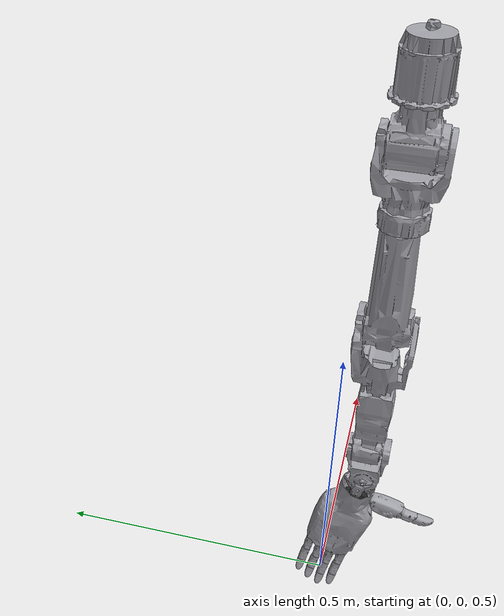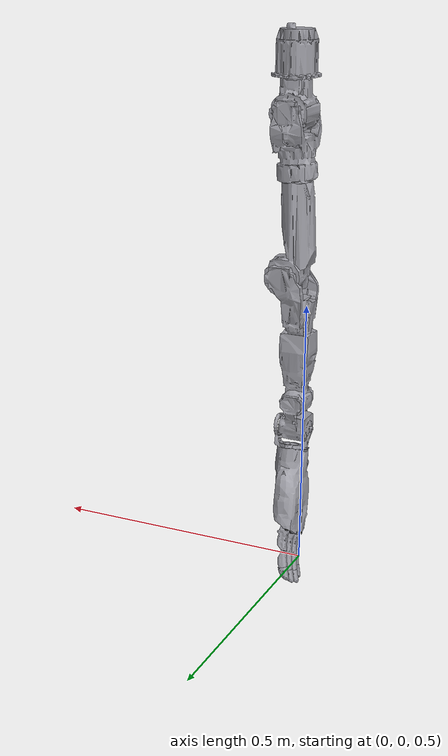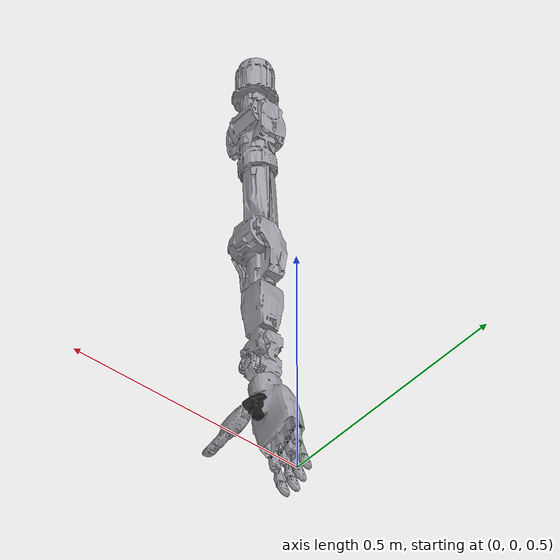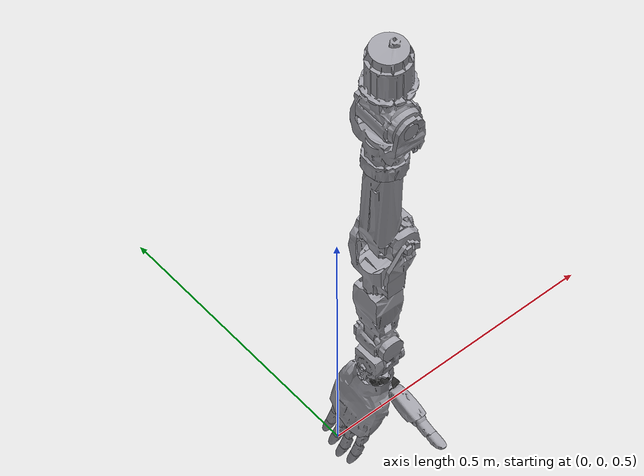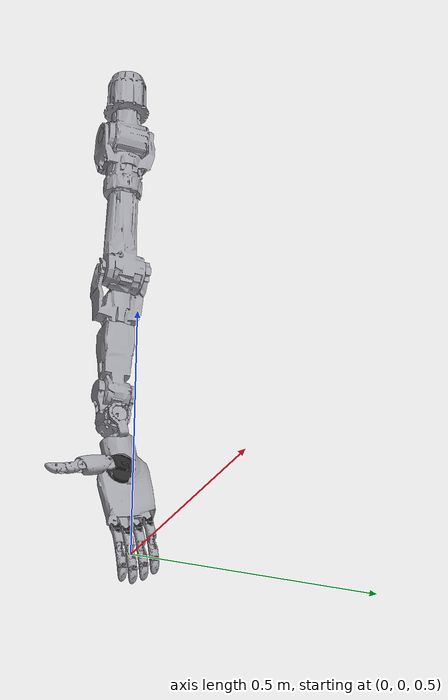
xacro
<?xml version="1.0"?>
<!-- MoveIt 用的机器人描述入口，实际模型在 temp_description 包里，改模型只需改那边 -->
<robot xmlns:xacro="http://www.ros.org/wiki/xacro" name="youbi_tc7_arm_with_l20_hand">
  <xacro:include filename="$(find temp_description)/urdf/arm_with_hand.urdf.xacro"/>
</robot>

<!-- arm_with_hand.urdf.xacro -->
<robot name="youbi_tc7_arm_with_l20_hand" xmlns:xacro="http://www.ros.org/wiki/xacro">
  <xacro:arg name="hand_xyz" default="0 0 0"/>
  <xacro:arg name="hand_rpy" default="0 0 0"/>
  <xacro:arg name="with_pen" default="false"/>
  <xacro:arg name="pen_xyz" default="0.05 0.01 0.205"/>
  <xacro:arg name="pen_rpy" default="1.5707963267948966 0 0"/>

  <xacro:include filename="arm.urdf.xacro"/>
  <xacro:include filename="hand_l20.urdf.xacro"/>
  <xacro:include filename="pen.urdf.xacro"/>

  <!-- 灵巧手挂载点：机械臂 hand_mount → 灵巧手掌根 -->
  <joint name="hand_attach_joint" type="fixed">
    <origin xyz="$(arg hand_xyz)" rpy="$(arg hand_rpy)"/>
    <parent link="hand_mount"/>
    <child link="hand_base_link"/>
  </joint>
  <xacro:if value="$(arg with_pen)">
    <xacro:simple_pen parent="hand_base_link" xyz="$(arg pen_xyz)" rpy="$(arg pen_rpy)"/>
  </xacro:if>
</robot>

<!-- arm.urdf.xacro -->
<!-- 机械臂模型唯一真源（launch 里由 xacro 现场展开，不再维护中间的 arm.urdf）
     用法: xacro arm.urdf.xacro [meshes_dir:=/path/to/meshes]
     默认 mesh 走 package://temp_description/meshes -->

<robot name="youbi_tc7_arm" xmlns:xacro="http://www.ros.org/wiki/xacro">
  <xacro:arg name="meshes_dir" default="package://temp_description/meshes"/>
  <!-- 肩部悬挂安装：根部固定在 1.5 m 高处，零位机械臂由上向下伸直。 -->
  <xacro:arg name="base_xyz" default="0 0 1.5"/>
  <xacro:arg name="base_rpy" default="3.141592653589793 0 0"/>
  <material name="silver"><color rgba="0.62 0.62 0.65 1.0"/></material>
  <material name="BlackAccent"><color rgba="0.15 0.15 0.15 1.0"/></material>
  <link name="world">
    <inertial>
      <origin xyz="0 0 0" rpy="0 0 0"/>
      <mass value="0.001"/>
      <inertia ixx="1e-09" ixy="0" ixz="0" iyy="1e-09" iyz="0" izz="1e-09"/>
    </inertial>
  </link>
  <joint name="fixed_base" type="fixed">
    <origin xyz="$(arg base_xyz)" rpy="$(arg base_rpy)"/>
    <parent link="world"/><child link="base_link"/>
  </joint>
  <link name="base_link">
    <inertial>
      <origin xyz="0.053863 0.056366 0.055898" rpy="0 0 0"/>
      <mass value="0.932313"/>
      <inertia ixx="0.00089482" ixy="-0.00000021" ixz="0.00000331" iyy="0.00089589" iyz="-0.00000016" izz="0.00061547"/>
    </inertial>
    <visual><origin xyz="-0.000000 -0.000000 -0.000000" rpy="0 0 0"/><geometry><mesh scale="0.001 0.001 0.001" filename="$(arg meshes_dir)/base_link.STL"/></geometry><material name="silver"/></visual>
    <collision><origin xyz="-0.000000 -0.000000 -0.000000" rpy="0 0 0"/><geometry><mesh scale="0.001 0.001 0.001" filename="$(arg meshes_dir)/collision/base_link.STL"/></geometry></collision>
  </link>

  <link name="link2">
    <inertial>
      <origin xyz="-0.001368 0.001385 0.054783" rpy="0 0 0"/>
      <mass value="0.941032"/>
      <inertia ixx="0.00092543" ixy="-0.00000031" ixz="-0.00000055" iyy="0.00073658" iyz="-0.00001555" izz="0.00079202"/>
    </inertial>
    <visual><origin xyz="-0.055130 -0.057630 -0.099000" rpy="0 0 0"/><geometry><mesh scale="0.001 0.001 0.001" filename="$(arg meshes_dir)/link2.STL"/></geometry><material name="silver"/></visual>
    <collision><origin xyz="-0.055130 -0.057630 -0.099000" rpy="0 0 0"/><geometry><mesh scale="0.001 0.001 0.001" filename="$(arg meshes_dir)/collision/link2.STL"/></geometry></collision>
  </link>

  <link name="link3">
    <inertial>
      <origin xyz="-0.004568 -0.001134 0.071755" rpy="0 0 0"/>
      <mass value="0.908943"/>
      <inertia ixx="0.00170433" ixy="0.00000682" ixz="0.00004746" iyy="0.00139506" iyz="-0.00011143" izz="0.00094937"/>
    </inertial>
    <visual><origin xyz="-0.053530 -0.055500 -0.162730" rpy="0 0 0"/><geometry><mesh scale="0.001 0.001 0.001" filename="$(arg meshes_dir)/link3.STL"/></geometry><material name="silver"/></visual>
    <collision><origin xyz="-0.053530 -0.055500 -0.162730" rpy="0 0 0"/><geometry><mesh scale="0.001 0.001 0.001" filename="$(arg meshes_dir)/collision/link3.STL"/></geometry></collision>
  </link>

  <link name="link4">
    <inertial>
      <origin xyz="0.005345 -0.001991 0.135546" rpy="0 0 0"/>
      <mass value="1.194347"/>
      <inertia ixx="0.00465833" ixy="0.00002099" ixz="-0.00046776" iyy="0.00477377" iyz="0.00011943" izz="0.00093769"/>
    </inertial>
    <visual><origin xyz="-0.046130 -0.055870 -0.283200" rpy="0 0 0"/><geometry><mesh scale="0.001 0.001 0.001" filename="$(arg meshes_dir)/link4.STL"/></geometry><material name="silver"/></visual>
    <collision><origin xyz="-0.046130 -0.055870 -0.283200" rpy="0 0 0"/><geometry><mesh scale="0.001 0.001 0.001" filename="$(arg meshes_dir)/collision/link4.STL"/></geometry></collision>
  </link>

  <link name="link5">
    <inertial>
      <origin xyz="-0.020585 -0.002782 0.057406" rpy="0 0 0"/>
      <mass value="0.497729"/>
      <inertia ixx="0.00094281" ixy="0.00002490" ixz="0.00010276" iyy="0.00068140" iyz="-0.00010777" izz="0.00052552"/>
    </inertial>
    <visual><origin xyz="-0.059000 -0.054200 -0.461600" rpy="0 0 0"/><geometry><mesh scale="0.001 0.001 0.001" filename="$(arg meshes_dir)/link5.STL"/></geometry><material name="silver"/></visual>
    <collision><origin xyz="-0.059000 -0.054200 -0.461600" rpy="0 0 0"/><geometry><mesh scale="0.001 0.001 0.001" filename="$(arg meshes_dir)/collision/link5.STL"/></geometry></collision>
  </link>

  <link name="link6">
    <inertial>
      <origin xyz="-0.002612 -0.003611 0.092435" rpy="0 0 0"/>
      <mass value="0.471725"/>
      <inertia ixx="0.00131560" ixy="0.00000016" ixz="0.00000036" iyy="0.00132771" iyz="0.00007030" izz="0.00025082"/>
    </inertial>
    <visual><origin xyz="-0.037530 -0.056230 -0.571250" rpy="0 0 0"/><geometry><mesh scale="0.001 0.001 0.001" filename="$(arg meshes_dir)/link6.STL"/></geometry><material name="silver"/></visual>
    <collision><origin xyz="-0.037530 -0.056230 -0.571250" rpy="0 0 0"/><geometry><mesh scale="0.001 0.001 0.001" filename="$(arg meshes_dir)/collision/link6.STL"/></geometry></collision>
  </link>

  <link name="link7">
    <inertial>
      <origin xyz="-0.000784 0.000848 0.044495" rpy="0 0 0"/>
      <mass value="0.321277"/>
      <inertia ixx="0.00026998" ixy="-0.00000026" ixz="0.00000170" iyy="0.00022469" iyz="0.00000265" izz="0.00017606"/>
    </inertial>
    <visual><origin xyz="-0.034070 -0.055700 -0.705830" rpy="0 0 0"/><geometry><mesh scale="0.001 0.001 0.001" filename="$(arg meshes_dir)/link7.STL"/></geometry><material name="silver"/></visual>
    <collision><origin xyz="-0.034070 -0.055700 -0.705830" rpy="0 0 0"/><geometry><mesh scale="0.001 0.001 0.001" filename="$(arg meshes_dir)/collision/link7.STL"/></geometry></collision>
  </link>

  <link name="tool_link">
    <inertial>
      <origin xyz="0.003921 -0.001848 0.018660" rpy="0 0 0"/>
      <mass value="0.048583"/>
      <inertia ixx="0.00002323" ixy="0.00000022" ixz="-0.00000085" iyy="0.00004981" iyz="0.00000279" izz="0.00003976"/>
    </inertial>
    <visual><origin xyz="-0.033900 -0.053470 -0.758570" rpy="0 0 0"/><geometry><mesh scale="0.001 0.001 0.001" filename="$(arg meshes_dir)/tool_link.STL"/></geometry><material name="silver"/></visual>
    <collision><origin xyz="-0.033900 -0.053470 -0.758570" rpy="0 0 0"/><geometry><mesh scale="0.001 0.001 0.001" filename="$(arg meshes_dir)/collision/tool_link.STL"/></geometry></collision>
  </link>

  <link name="hand_mount">
    <inertial>
      <origin xyz="0 0 0" rpy="0 0 0"/>
      <mass value="0.01"/>
      <inertia ixx="1e-06" ixy="0" ixz="0" iyy="1e-06" iyz="0" izz="1e-06"/>
    </inertial>
  </link>
  <joint name="hand_mount_joint" type="fixed">
    <origin xyz="0.002590 -0.005280 0.039590" rpy="0.2170 0.0000 0.0000"/>
    <parent link="tool_link"/><child link="hand_mount"/>
  </joint>

  <joint name="joint1" type="revolute">
    <origin xyz="0.055130 0.057630 0.099000" rpy="0 0 0"/>
    <parent link="base_link"/><child link="link2"/>
    <axis xyz="0.000000 0.000000 1.000000"/>
    <limit lower="-3.1416" upper="3.1416" effort="100.000000" velocity="2.000000"/>
  </joint>

  <joint name="joint2" type="revolute">
    <origin xyz="-0.001600 -0.002130 0.063730" rpy="0 0 0"/>
    <parent link="link2"/><child link="link3"/>
    <axis xyz="0.000000 1.000000 0.000000"/>
    <limit lower="-1.8326" upper="1.8326" effort="100.000000" velocity="2.000000"/>
  </joint>

  <joint name="joint3" type="revolute">
    <origin xyz="-0.007400 0.000370 0.120470" rpy="0 0 0"/>
    <parent link="link3"/><child link="link4"/>
    <axis xyz="0.000000 0.000000 1.000000"/>
    <limit lower="-3.1416" upper="3.1416" effort="100.000000" velocity="2.000000"/>
  </joint>

  <joint name="joint4" type="revolute">
    <origin xyz="0.012870 -0.001670 0.178400" rpy="0 0 0"/>
    <parent link="link4"/><child link="link5"/>
    <axis xyz="0.000000 1.000000 0.000000"/>
    <limit lower="0.0000" upper="2.9671" effort="100.000000" velocity="2.000000"/>
  </joint>

  <joint name="joint5" type="revolute">
    <origin xyz="-0.021470 0.002030 0.109650" rpy="0 0 0"/>
    <parent link="link5"/><child link="link6"/>
    <axis xyz="0.000000 0.000000 1.000000"/>
    <limit lower="-3.1416" upper="3.1416" effort="100.000000" velocity="2.000000"/>
  </joint>

  <joint name="joint6" type="revolute">
    <origin xyz="-0.003460 -0.000530 0.134580" rpy="0 0 0"/>
    <parent link="link6"/><child link="link7"/>
    <axis xyz="0.000000 1.000000 0.000000"/>
    <limit lower="-1.8326" upper="1.8326" effort="100.000000" velocity="2.000000"/>
  </joint>

  <joint name="joint7" type="revolute">
    <origin xyz="-0.000170 -0.002230 0.052740" rpy="0 0 0"/>
    <parent link="link7"/><child link="tool_link"/>
    <axis xyz="-1.000000 0.000000 0.000000"/>
    <limit lower="-1.5708" upper="1.5708" effort="100.000000" velocity="2.000000"/>
  </joint>

</robot>

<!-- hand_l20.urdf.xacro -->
<robot xmlns:xacro="http://www.ros.org/wiki/xacro">
  <xacro:arg name="meshes_dir" default="package://temp_description/meshes"/>
  <link name="hand_base_link">
    <inertial>
      <origin xyz="-0.0116260966942382 -0.00274813279998326 0.0887556064299578" rpy="0 0 0"/>
      <mass value="0.119355521222427"/>
      <inertia ixx="0.000281608895823112" ixy="8.38474241472843E-07" ixz="-1.21134466138976E-05" iyy="0.00019328567036429" iyz="4.38631241419914E-07" izz="0.000103627416878272"/>
    </inertial>
    <visual>
      <origin xyz="0 0 0" rpy="0 0 0"/>
      <geometry><mesh filename="$(arg meshes_dir)/hand_base_link.STL"/></geometry>
      <material name="silver"/>
    </visual>
    <collision>
      <origin xyz="0 0 0" rpy="0 0 0"/>
      <geometry><mesh filename="$(arg meshes_dir)/collision/hand_base_link.STL"/></geometry>
    </collision>
  </link>
  <link name="pinky_metacarpals">
    <inertial>
      <origin xyz="0.0111783787153197 1.73988259632996E-08 0.00220160108534925" rpy="0 0 0"/>
      <mass value="0.000876738307234833"/>
      <inertia ixx="3.50684268310259E-08" ixy="-2.01255880662754E-13" ixz="5.24776532940736E-09" iyy="2.68810255289946E-08" iyz="-3.6732684106161E-14" izz="4.23561712818563E-08"/>
    </inertial>
    <visual>
      <origin xyz="0 0 0" rpy="0 0 0"/>
      <geometry><mesh filename="$(arg meshes_dir)/pinky_metacarpals.STL"/></geometry>
      <material name="BlackAccent"/>
    </visual>
    <collision>
      <origin xyz="0 0 0" rpy="0 0 0"/>
      <geometry><mesh filename="$(arg meshes_dir)/collision/pinky_metacarpals.STL"/></geometry>
    </collision>
  </link>
  <link name="pinky_proximal">
    <inertial>
      <origin xyz="-0.00112908280804496 -3.86673394475734E-06 0.0228400655439676" rpy="0 0 0"/>
      <mass value="0.00451758867960127"/>
      <inertia ixx="6.70005738245491E-07" ixy="1.07100998730671E-11" ixz="-2.60697889693044E-08" iyy="6.78910860635017E-07" iyz="1.619384302116E-10" izz="1.37487233622769E-07"/>
    </inertial>
    <visual>
      <origin xyz="0 0 0" rpy="0 0 0"/>
      <geometry><mesh filename="$(arg meshes_dir)/pinky_proximal.STL"/></geometry>
      <material name="silver"/>
    </visual>
    <collision>
      <origin xyz="0 0 0" rpy="0 0 0"/>
      <geometry><mesh filename="$(arg meshes_dir)/collision/pinky_proximal.STL"/></geometry>
    </collision>
  </link>
  <link name="pinky_middle">
    <inertial>
      <origin xyz="-0.000210918582412463 -2.91656475989721E-06 0.0168376013644396" rpy="0 0 0"/>
      <mass value="0.00240742140800545"/>
      <inertia ixx="2.37171034123177E-07" ixy="-2.70991764305561E-12" ixz="-1.39296056921613E-08" iyy="1.83342187871652E-07" iyz="3.74983864753835E-12" izz="9.8226350069222E-08"/>
    </inertial>
    <visual>
      <origin xyz="0 0 0" rpy="0 0 0"/>
      <geometry><mesh filename="$(arg meshes_dir)/pinky_middle.STL"/></geometry>
      <material name="silver"/>
    </visual>
    <collision>
      <origin xyz="0 0 0" rpy="0 0 0"/>
      <geometry><mesh filename="$(arg meshes_dir)/collision/pinky_middle.STL"/></geometry>
    </collision>
  </link>
  <link name="pinky_distal">
    <inertial>
      <origin xyz="-0.00807040294887727 -1.95860163051398E-05 0.00803087332396402" rpy="0 0 0"/>
      <mass value="0.00337412669848792"/>
      <inertia ixx="1.62067265373363E-07" ixy="-1.03084161797139E-10" ixz="-5.96264453601984E-08" iyy="1.79090083193527E-07" iyz="1.05530293251026E-10" izz="1.32918139665313E-07"/>
    </inertial>
    <visual>
      <origin xyz="0 0 0" rpy="0 0 0"/>
      <geometry><mesh filename="$(arg meshes_dir)/pinky_distal.STL"/></geometry>
      <material name="silver"/>
    </visual>
    <collision>
      <origin xyz="0 0 0" rpy="0 0 0"/>
      <geometry><mesh filename="$(arg meshes_dir)/collision/pinky_distal.STL"/></geometry>
    </collision>
  </link>
  <link name="ring_metacarpals">
    <inertial>
      <origin xyz="0.0111783787153197 -5.36905619352712E-07 0.0022016396219149" rpy="0 0 0"/>
      <mass value="0.000876738307234883"/>
      <inertia ixx="3.5068426831027E-08" ixy="-2.01255880718238E-13" ixz="5.24776532940712E-09" iyy="2.68810255289954E-08" iyz="-3.67326835665223E-14" izz="4.23561712818567E-08"/>
    </inertial>
    <visual>
      <origin xyz="0 0 0" rpy="0 0 0"/>
      <geometry><mesh filename="$(arg meshes_dir)/ring_metacarpals.STL"/></geometry>
      <material name="BlackAccent"/>
    </visual>
    <collision>
      <origin xyz="0 0 0" rpy="0 0 0"/>
      <geometry><mesh filename="$(arg meshes_dir)/collision/ring_metacarpals.STL"/></geometry>
    </collision>
  </link>
  <link name="ring_proximal">
    <inertial>
      <origin xyz="-0.00112908262583935 -1.70769630077061E-05 0.0228400659770985" rpy="0 0 0"/>
      <mass value="0.00451758885102983"/>
      <inertia ixx="6.70005760179099E-07" ixy="1.07124239123891E-11" ixz="-2.60697922383748E-08" iyy="6.78910876105749E-07" iyz="1.61928071276549E-10" izz="1.37487241358748E-07"/>
    </inertial>
    <visual>
      <origin xyz="0 0 0" rpy="0 0 0"/>
      <geometry><mesh filename="$(arg meshes_dir)/ring_proximal.STL"/></geometry>
      <material name="silver"/>
    </visual>
    <collision>
      <origin xyz="0 0 0" rpy="0 0 0"/>
      <geometry><mesh filename="$(arg meshes_dir)/collision/ring_proximal.STL"/></geometry>
    </collision>
  </link>
  <link name="ring_middle">
    <inertial>
      <origin xyz="-0.00021091859446306 -2.91657898018882E-06 0.0168376013345287" rpy="0 0 0"/>
      <mass value="0.00240742140052362"/>
      <inertia ixx="2.37171033138143E-07" ixy="-2.7100414951465E-12" ixz="-1.39296060459522E-08" iyy="1.83342186859774E-07" iyz="3.74956284923257E-12" izz="9.82263498201999E-08"/>
    </inertial>
    <visual>
      <origin xyz="0 0 0" rpy="0 0 0"/>
      <geometry><mesh filename="$(arg meshes_dir)/ring_middle.STL"/></geometry>
      <material name="silver"/>
    </visual>
    <collision>
      <origin xyz="0 0 0" rpy="0 0 0"/>
      <geometry><mesh filename="$(arg meshes_dir)/collision/ring_middle.STL"/></geometry>
    </collision>
  </link>
  <link name="ring_distal">
    <inertial>
      <origin xyz="-0.00807040294866931 -1.9586017669021E-05 0.00803087256062983" rpy="0 0 0"/>
      <mass value="0.0033741266986076"/>
      <inertia ixx="1.6206726538022E-07" ixy="-1.03084186529573E-10" ixz="-5.96264453639804E-08" iyy="1.79090083161836E-07" iyz="1.05530278574068E-10" izz="1.32918139683415E-07"/>
    </inertial>
    <visual>
      <origin xyz="0 0 0" rpy="0 0 0"/>
      <geometry><mesh filename="$(arg meshes_dir)/ring_distal.STL"/></geometry>
      <material name="silver"/>
    </visual>
    <collision>
      <origin xyz="0 0 0" rpy="0 0 0"/>
      <geometry><mesh filename="$(arg meshes_dir)/collision/ring_distal.STL"/></geometry>
    </collision>
  </link>
  <link name="middle_metacarpals">
    <inertial>
      <origin xyz="0.0111783787153198 -5.36905619463734E-07 0.00220163962191467" rpy="0 0 0"/>
      <mass value="0.000876738307234834"/>
      <inertia ixx="3.50684268310259E-08" ixy="-2.0125588061605E-13" ixz="5.24776532940725E-09" iyy="2.68810255289945E-08" iyz="-3.67326839308491E-14" izz="4.23561712818563E-08"/>
    </inertial>
    <visual>
      <origin xyz="0 0 0" rpy="0 0 0"/>
      <geometry><mesh filename="$(arg meshes_dir)/middle_metacarpals.STL"/></geometry>
      <material name="BlackAccent"/>
    </visual>
    <collision>
      <origin xyz="0 0 0" rpy="0 0 0"/>
      <geometry><mesh filename="$(arg meshes_dir)/collision/middle_metacarpals.STL"/></geometry>
    </collision>
  </link>
  <link name="middle_proximal">
    <inertial>
      <origin xyz="-0.00112908264667504 -1.70765644096349E-05 0.0228400658126111" rpy="0 0 0"/>
      <mass value="0.00451758879836063"/>
      <inertia ixx="6.70005750213689E-07" ixy="1.0709683946819E-11" ixz="-2.60697892463952E-08" iyy="6.7891086764891E-07" iyz="1.61944386240367E-10" izz="1.37487237816443E-07"/>
    </inertial>
    <visual>
      <origin xyz="0 0 0" rpy="0 0 0"/>
      <geometry><mesh filename="$(arg meshes_dir)/middle_proximal.STL"/></geometry>
      <material name="silver"/>
    </visual>
    <collision>
      <origin xyz="0 0 0" rpy="0 0 0"/>
      <geometry><mesh filename="$(arg meshes_dir)/collision/middle_proximal.STL"/></geometry>
    </collision>
  </link>
  <link name="middle_middle">
    <inertial>
      <origin xyz="-0.000210918582531389 -2.91656481549163E-06 0.0168376013611927" rpy="0 0 0"/>
      <mass value="0.00240742140799016"/>
      <inertia ixx="2.3717103371746E-07" ixy="-2.70991790215455E-12" ixz="-1.39296056849284E-08" iyy="1.83342187462169E-07" iyz="3.74983812024697E-12" izz="9.82263500660551E-08"/>
    </inertial>
    <visual>
      <origin xyz="0 0 0" rpy="0 0 0"/>
      <geometry><mesh filename="$(arg meshes_dir)/middle_middle.STL"/></geometry>
      <material name="silver"/>
    </visual>
    <collision>
      <origin xyz="0 0 0" rpy="0 0 0"/>
      <geometry><mesh filename="$(arg meshes_dir)/collision/middle_middle.STL"/></geometry>
    </collision>
  </link>
  <link name="middle_distal">
    <inertial>
      <origin xyz="-0.00807040294827011 -1.95860161913697E-05 0.00803087332606282" rpy="0 0 0"/>
      <mass value="0.00337412669879527"/>
      <inertia ixx="1.62067265406276E-07" ixy="-1.03084160292156E-10" ixz="-5.96264453651413E-08" iyy="1.79090083197241E-07" iyz="1.05530287328658E-10" izz="1.32918139683668E-07"/>
    </inertial>
    <visual>
      <origin xyz="0 0 0" rpy="0 0 0"/>
      <geometry><mesh filename="$(arg meshes_dir)/middle_distal.STL"/></geometry>
      <material name="silver"/>
    </visual>
    <collision>
      <origin xyz="0 0 0" rpy="0 0 0"/>
      <geometry><mesh filename="$(arg meshes_dir)/collision/middle_distal.STL"/></geometry>
    </collision>
  </link>
  <link name="index_metacarpals">
    <inertial>
      <origin xyz="0.0111783787153197 -5.36905619408223E-07 0.0022016396219149" rpy="0 0 0"/>
      <mass value="0.000876738307234888"/>
      <inertia ixx="3.50684268310272E-08" ixy="-2.01255880639633E-13" ixz="5.24776532940715E-09" iyy="2.68810255289955E-08" iyz="-3.67326838815665E-14" izz="4.23561712818569E-08"/>
    </inertial>
    <visual>
      <origin xyz="0 0 0" rpy="0 0 0"/>
      <geometry><mesh filename="$(arg meshes_dir)/index_metacarpals.STL"/></geometry>
      <material name="BlackAccent"/>
    </visual>
    <collision>
      <origin xyz="0 0 0" rpy="0 0 0"/>
      <geometry><mesh filename="$(arg meshes_dir)/collision/index_metacarpals.STL"/></geometry>
    </collision>
  </link>
  <link name="index_proximal">
    <inertial>
      <origin xyz="-0.00112908264491655 -3.86657489762077E-06 0.0228400658147424" rpy="0 0 0"/>
      <mass value="0.00451758879934099"/>
      <inertia ixx="6.70005750303174E-07" ixy="1.07096827382529E-11" ixz="-2.60697892451836E-08" iyy="6.78910867706126E-07" iyz="1.61944343361799E-10" izz="1.37487237848926E-07"/>
    </inertial>
    <visual>
      <origin xyz="0 0 0" rpy="0 0 0"/>
      <geometry><mesh filename="$(arg meshes_dir)/index_proximal.STL"/></geometry>
      <material name="silver"/>
    </visual>
    <collision>
      <origin xyz="0 0 0" rpy="0 0 0"/>
      <geometry><mesh filename="$(arg meshes_dir)/collision/index_proximal.STL"/></geometry>
    </collision>
  </link>
  <link name="index_middle">
    <inertial>
      <origin xyz="-0.000210918632589208 -2.91655816400671E-06 0.0168376013550637" rpy="0 0 0"/>
      <mass value="0.00240742140798158"/>
      <inertia ixx="2.37171033813523E-07" ixy="-2.70992594914544E-12" ixz="-1.3929605674102E-08" iyy="1.83342187562481E-07" iyz="3.74988422279869E-12" izz="9.82263500700157E-08"/>
    </inertial>
    <visual>
      <origin xyz="0 0 0" rpy="0 0 0"/>
      <geometry><mesh filename="$(arg meshes_dir)/index_middle.STL"/></geometry>
      <material name="silver"/>
    </visual>
    <collision>
      <origin xyz="0 0 0" rpy="0 0 0"/>
      <geometry><mesh filename="$(arg meshes_dir)/collision/index_middle.STL"/></geometry>
    </collision>
  </link>
  <link name="index_distal">
    <inertial>
      <origin xyz="-0.00807040294819541 -1.95860155396688E-05 0.00803087332614133" rpy="0 0 0"/>
      <mass value="0.0033741266988187"/>
      <inertia ixx="1.62067265427891E-07" ixy="-1.030841487474E-10" ixz="-5.96264453690637E-08" iyy="1.79090083185726E-07" iyz="1.05530285191432E-10" izz="1.32918139694536E-07"/>
    </inertial>
    <visual>
      <origin xyz="0 0 0" rpy="0 0 0"/>
      <geometry><mesh filename="$(arg meshes_dir)/index_distal.STL"/></geometry>
      <material name="silver"/>
    </visual>
    <collision>
      <origin xyz="0 0 0" rpy="0 0 0"/>
      <geometry><mesh filename="$(arg meshes_dir)/collision/index_distal.STL"/></geometry>
    </collision>
  </link>
  <link name="thumb_metacarpals_base1">
    <inertial>
      <origin xyz="0.00225106540143255 0.0106280781314811 0.00386496887062775" rpy="0 0 0"/>
      <mass value="0.0123197273270212"/>
      <inertia ixx="3.08398596758481E-06" ixy="-7.90434968870597E-08" ixz="4.99257949343636E-08" iyy="4.73419522678173E-06" iyz="-1.89397292598919E-07" izz="2.03268500392085E-06"/>
    </inertial>
    <visual>
      <origin xyz="0 0 0" rpy="0 0 0"/>
      <geometry><mesh filename="$(arg meshes_dir)/thumb_metacarpals_base1.STL"/></geometry>
      <material name="BlackAccent"/>
    </visual>
    <collision>
      <origin xyz="0 0 0" rpy="0 0 0"/>
      <geometry><mesh filename="$(arg meshes_dir)/collision/thumb_metacarpals_base1.STL"/></geometry>
    </collision>
  </link>
  <link name="thumb_metacarpals_base2">
    <inertial>
      <origin xyz="0.00119794122046318 0.00176288166433086 0.00980405746394286" rpy="0 0 0"/>
      <mass value="0.00459776097124383"/>
      <inertia ixx="7.31648689063878E-07" ixy="-4.16925980705595E-08" ixz="7.27793121012466E-08" iyy="5.38489639105841E-07" iyz="-1.05409912056041E-07" izz="3.72559163410338E-07"/>
    </inertial>
    <visual>
      <origin xyz="0 0 0" rpy="0 0 0"/>
      <geometry><mesh filename="$(arg meshes_dir)/thumb_metacarpals_base2.STL"/></geometry>
      <material name="BlackAccent"/>
    </visual>
    <collision>
      <origin xyz="0 0 0" rpy="0 0 0"/>
      <geometry><mesh filename="$(arg meshes_dir)/collision/thumb_metacarpals_base2.STL"/></geometry>
    </collision>
  </link>
  <link name="thumb_metacarpals">
    <inertial>
      <origin xyz="0.00549384865796482 0.00805524685758721 0.0258290762784949" rpy="0 0 0"/>
      <mass value="0.0119728760675928"/>
      <inertia ixx="4.12796153480032E-06" ixy="2.08264516047914E-08" ixz="1.78085589076533E-08" iyy="4.82110081302191E-06" iyz="6.19419770800233E-08" izz="1.21324079339986E-06"/>
    </inertial>
    <visual>
      <origin xyz="0 0 0" rpy="0 0 0"/>
      <geometry><mesh filename="$(arg meshes_dir)/thumb_metacarpals.STL"/></geometry>
      <material name="silver"/>
    </visual>
    <collision>
      <origin xyz="0 0 0" rpy="0 0 0"/>
      <geometry><mesh filename="$(arg meshes_dir)/collision/thumb_metacarpals.STL"/></geometry>
    </collision>
  </link>
  <link name="thumb_proximal">
    <inertial>
      <origin xyz="-0.0011057174593414 0.000334119020688653 0.0128607021591473" rpy="0 0 0"/>
      <mass value="0.00515940162015082"/>
      <inertia ixx="4.56371524641978E-07" ixy="1.15255552260169E-09" ixz="8.11361744697202E-08" iyy="6.16289154720601E-07" iyz="5.36536229784869E-09" izz="2.4689422432426E-07"/>
    </inertial>
    <visual>
      <origin xyz="0 0 0" rpy="0 0 0"/>
      <geometry><mesh filename="$(arg meshes_dir)/thumb_proximal.STL"/></geometry>
      <material name="silver"/>
    </visual>
    <collision>
      <origin xyz="0 0 0" rpy="0 0 0"/>
      <geometry><mesh filename="$(arg meshes_dir)/collision/thumb_proximal.STL"/></geometry>
    </collision>
  </link>
  <link name="thumb_distal">
    <inertial>
      <origin xyz="-0.00636210776657178 4.14651450399844E-05 0.0118150620527104" rpy="0 0 0"/>
      <mass value="0.00614449456083594"/>
      <inertia ixx="3.71418540379979E-07" ixy="2.36548498459678E-10" ixz="-9.49666673834207E-08" iyy="4.48768445500361E-07" iyz="-9.82614466952934E-10" izz="1.66160918259876E-07"/>
    </inertial>
    <visual>
      <origin xyz="0 0 0" rpy="0 0 0"/>
      <geometry><mesh filename="$(arg meshes_dir)/thumb_distal.STL"/></geometry>
      <material name="silver"/>
    </visual>
    <collision>
      <origin xyz="0 0 0" rpy="0 0 0"/>
      <geometry><mesh filename="$(arg meshes_dir)/collision/thumb_distal.STL"/></geometry>
    </collision>
  </link>

  <joint name="pinky_mcp_roll" type="revolute">
    <origin xyz="-0.028576 -0.038102 0.15031" rpy="0 0 0"/>
    <parent link="hand_base_link"/><child link="pinky_metacarpals"/>
    <axis xyz="1 0 0"/>
    <limit lower="-0.17" upper="0.17" effort="1" velocity="1"/>
  </joint>
  <joint name="pinky_mcp_pitch" type="revolute">
    <origin xyz="0.016675 0 0" rpy="0 0 0"/>
    <parent link="pinky_metacarpals"/><child link="pinky_proximal"/>
    <axis xyz="0 1 0"/>
    <limit lower="0" upper="1.4" effort="1" velocity="1"/>
  </joint>
  <joint name="pinky_pip" type="revolute">
    <origin xyz="-0.00419455244191127 1.32099958100595E-05 0.0448194355633776" rpy="0 0 0"/>
    <parent link="pinky_proximal"/><child link="pinky_middle"/>
    <axis xyz="0 1 0"/>
    <limit lower="0" upper="1.57" effort="1" velocity="1"/>
  </joint>
  <joint name="pinky_dip" type="revolute">
    <origin xyz="0.0027556 0 0.031702" rpy="0 0 0"/>
    <parent link="pinky_middle"/><child link="pinky_distal"/>
    <axis xyz="0 1 0"/>
    <limit lower="0" upper="1.4" effort="1" velocity="1"/>
  </joint>
  <joint name="ring_mcp_roll" type="revolute">
    <origin xyz="-0.032199 -0.016502 0.15931" rpy="0 0 0"/>
    <parent link="hand_base_link"/><child link="ring_metacarpals"/>
    <axis xyz="1 0 0"/>
    <limit lower="-0.17" upper="0.17" effort="1" velocity="1"/>
  </joint>
  <joint name="ring_mcp_pitch" type="revolute">
    <origin xyz="0.016675 1.2656E-05 0" rpy="0 0 0"/>
    <parent link="ring_metacarpals"/><child link="ring_proximal"/>
    <axis xyz="0 1 0"/>
    <limit lower="0" upper="1.4" effort="1" velocity="1"/>
  </joint>
  <joint name="ring_pip" type="revolute">
    <origin xyz="-0.00419455244174995 0 0.0448194355645609" rpy="0 0 0"/>
    <parent link="ring_proximal"/><child link="ring_middle"/>
    <axis xyz="0 1 0"/>
    <limit lower="0" upper="1.57" effort="1" velocity="1"/>
  </joint>
  <joint name="ring_dip" type="revolute">
    <origin xyz="0.00275561956405355 0 0.0317024252327154" rpy="0 0 0"/>
    <parent link="ring_middle"/><child link="ring_distal"/>
    <axis xyz="0 1 0"/>
    <limit lower="0" upper="1.4" effort="1" velocity="1"/>
  </joint>
  <joint name="middle_mcp_roll" type="revolute">
    <origin xyz="-0.0345042006792679 0.00509811417717426 0.163804307612682" rpy="0 0 0"/>
    <parent link="hand_base_link"/><child link="middle_metacarpals"/>
    <axis xyz="0.999999999998204 0 0"/>
    <limit lower="-0.17" upper="0.17" effort="1" velocity="1"/>
  </joint>
  <joint name="middle_mcp_pitch" type="revolute">
    <origin xyz="0.0166748095398548 1.26556862705962E-05 0" rpy="0 0 0"/>
    <parent link="middle_metacarpals"/><child link="middle_proximal"/>
    <axis xyz="0 1 0"/>
    <limit lower="0" upper="1.4" effort="1" velocity="1"/>
  </joint>
  <joint name="middle_pip" type="revolute">
    <origin xyz="-0.00419455244189623 0 0.0448194355665477" rpy="0 0 0"/>
    <parent link="middle_proximal"/><child link="middle_middle"/>
    <axis xyz="0 1 0"/>
    <limit lower="0" upper="1.57" effort="1" velocity="1"/>
  </joint>
  <joint name="middle_dip" type="revolute">
    <origin xyz="0.00275561956368908 0 0.031702425228504" rpy="0 0 0"/>
    <parent link="middle_middle"/><child link="middle_distal"/>
    <axis xyz="0 1 0"/>
    <limit lower="0" upper="1.4" effort="1" velocity="1"/>
  </joint>
  <joint name="index_mcp_roll" type="revolute">
    <origin xyz="-0.0297703583048348 0.026698113515616 0.159311418025823" rpy="0 0 0"/>
    <parent link="hand_base_link"/><child link="index_metacarpals"/>
    <axis xyz="0.999999999998204 0 0"/>
    <limit lower="-0.17" upper="0.17" effort="1" velocity="1"/>
  </joint>
  <joint name="index_mcp_pitch" type="revolute">
    <origin xyz="0.0166748095646496 0 0" rpy="0 0 0"/>
    <parent link="index_metacarpals"/><child link="index_proximal"/>
    <axis xyz="0 1 0"/>
    <limit lower="0" upper="1.4" effort="1" velocity="1"/>
  </joint>
  <joint name="index_pip" type="revolute">
    <origin xyz="-0.00419455239160021 1.32099983796707E-05 0.0448194355727413" rpy="0 0 0"/>
    <parent link="index_proximal"/><child link="index_middle"/>
    <axis xyz="0 1 0"/>
    <limit lower="0" upper="1.57" effort="1" velocity="1"/>
  </joint>
  <joint name="index_dip" type="revolute">
    <origin xyz="0.00275561951363186 0 0.0317024252223218" rpy="0 0 0"/>
    <parent link="index_middle"/><child link="index_distal"/>
    <axis xyz="0 1 0"/>
    <limit lower="0" upper="1.4" effort="1" velocity="1"/>
  </joint>
  <joint name="thumb_cmc_yaw" type="revolute">
    <origin xyz="0.0039847 0.0050818 0.057392" rpy="3.1416 0 1.5708"/>
    <parent link="hand_base_link"/><child link="thumb_metacarpals_base1"/>
    <axis xyz="0 1 0"/>
    <limit lower="0" upper="1.4" effort="1" velocity="1"/>
  </joint>
  <joint name="thumb_cmc_roll" type="revolute">
    <origin xyz="0.000784740002368223 0.0196077603627024 0.000308721957079858" rpy="1.18264333118745 0 1.57079632679503"/>
    <parent link="thumb_metacarpals_base1"/><child link="thumb_metacarpals_base2"/>
    <axis xyz="0 1 0"/>
    <limit lower="0" upper="1.22" effort="1" velocity="1"/>
  </joint>
  <joint name="thumb_cmc_pitch" type="revolute">
    <origin xyz="-0.000109690908352875 -0.00396440679180957 0.0307945044045898" rpy="0 0.388152995607441 -1.57079632624948"/>
    <parent link="thumb_metacarpals_base2"/><child link="thumb_metacarpals"/>
    <axis xyz="0 1 0"/>
    <limit lower="0" upper="0.79" effort="1" velocity="1"/>
  </joint>
  <joint name="thumb_mcp" type="revolute">
    <origin xyz="0.00857856380171737 0 0.0555715948082196" rpy="0 0 0"/>
    <parent link="thumb_metacarpals"/><child link="thumb_proximal"/>
    <axis xyz="0 1 0"/>
    <limit lower="0" upper="1.05" effort="1" velocity="1"/>
  </joint>
  <joint name="thumb_dip" type="revolute">
    <origin xyz="0.0066653832125308 0 0.0342561774516276" rpy="0 0 0"/>
    <parent link="thumb_proximal"/><child link="thumb_distal"/>
    <axis xyz="0 1 0"/>
    <limit lower="0" upper="1.22" effort="1" velocity="1"/>
  </joint>
</robot>
